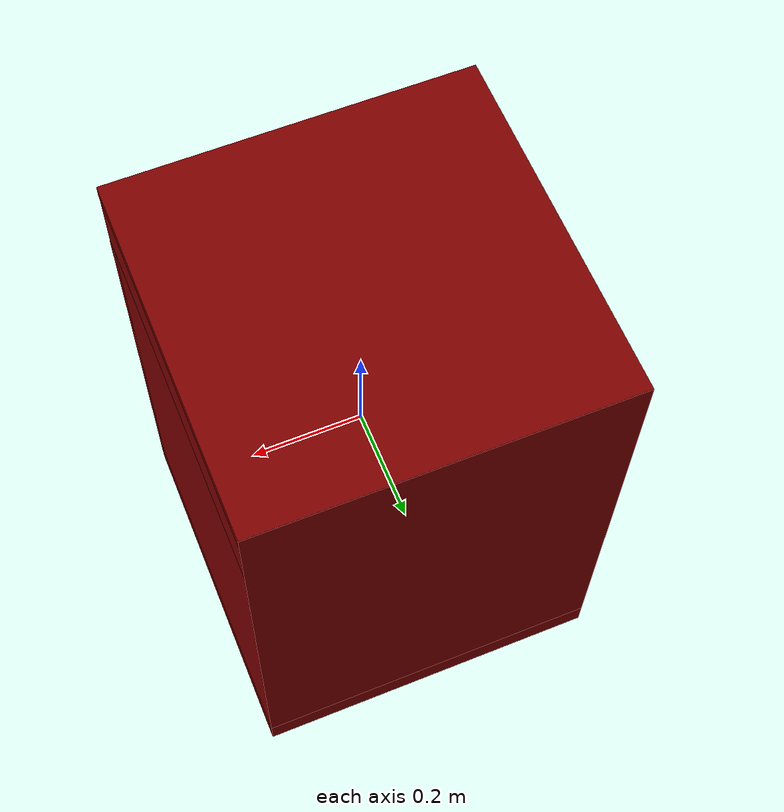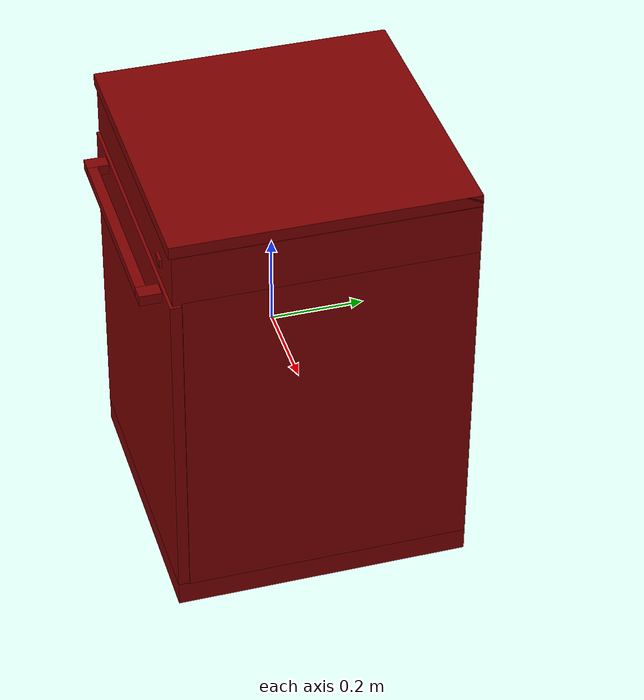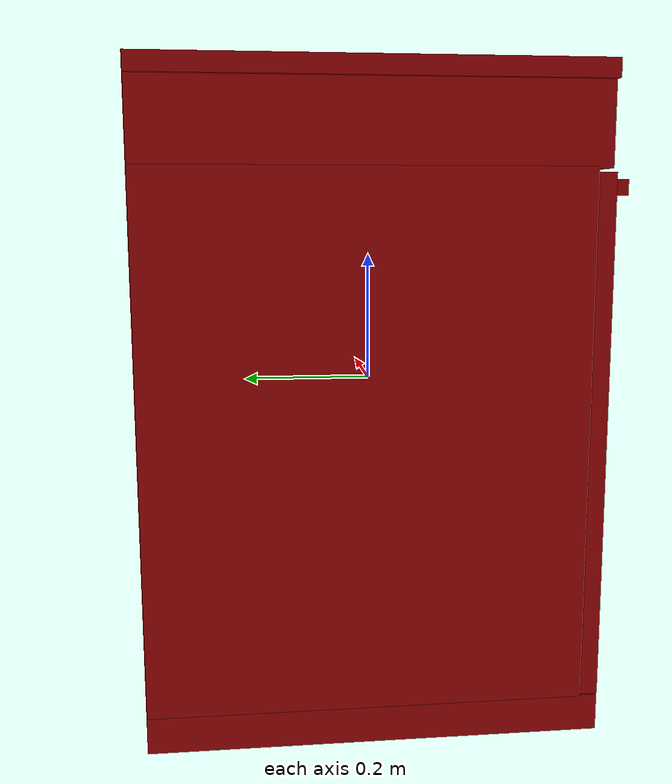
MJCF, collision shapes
<?xml version='1.0' encoding='UTF-8'?>
<mujoco model="model">
  <option timestep="0.002" gravity="0.0 0.0 -9.81"/>
  <compiler angle="radian"/>
  <asset>
    <mesh file="visuals/button_power.obj" name="button_power_vis"/>
    <mesh file="visuals/Body001.obj" name="Body001_vis"/>
    <mesh file="visuals/door.obj" name="door_vis"/>
    <mesh file="visuals/rack0.obj" name="rack0_vis"/>
    <mesh file="visuals/rack1.obj" name="rack1_vis"/>
    <texture file="visuals/T_BC001.png" name="Body001_material" type="2d"/>
    <material name="Body001_material" rgba="1 1 1 1.0" texture="Body001_material" shininess="0.2472135901451111" specular="5"/>
    <texture file="visuals/T_BC001.png" name="button_power_material" type="2d"/>
    <material name="button_power_material" rgba="1 1 1 1.0" texture="button_power_material" shininess="0.4472135901451111" specular="0.3103448502657381"/>
    <texture file="visuals/T_BC001.png" name="door_material" type="2d"/>
    <material name="door_material" rgba="1 1 1 1.0" texture="door_material" shininess="0.4472135901451111" specular="2"/>
    <texture file="visuals/T_BC001.png" name="rack0_material" type="2d"/>
    <material name="rack0_material" rgba="1 1 1 1.0" texture="rack0_material" shininess="0.4472135901451111" specular="3"/>
    <texture file="visuals/T_BC001.png" name="rack1_material" type="2d"/>
    <material name="rack1_material" rgba="1 1 1 1.0" texture="rack1_material" shininess="0.4472135901451111" specular="3"/>
  </asset>
  <default>
    <default class="visual">
      <geom conaffinity="0" contype="0" group="1" type="mesh"/>
    </default>
    <default class="collision">
      <geom group="0" rgba="0.5 0 0 0.5"/>
    </default>
    <default class="spawn">
      <geom group="0" rgba="1 1 1 0.5" contype="0" conaffinity="0"/>
      <site group="0" rgba="1 1 1 0.5"/>
    </default>
    <default class="region">
      <geom group="1" conaffinity="0" contype="0" rgba="0 1 0 0"/>
    </default>
  </default>
  <worldbody>
    <body>
      <body name="object">
        <geom mesh="Body001_vis" type="mesh" solimp="0.998 0.998 0.001" solref="0.001 1" friction="0.95 0.3 0.1" class="visual" material="Body001_material"/>
        <geom class="collision" type="box" pos="-1.525040715932846e-08 0.30323001742362976 0.026627689599990845" size="0.31804102659225464 0.03860585764050484 0.44166702032089233" quat="1.0 0.0 0.0 0.0"/>
        <geom class="collision" type="box" pos="1.4086253941059113e-08 0.022971488535404205 0.4555831253528595" size="0.3180411159992218 0.31813549995422363 0.01296332199126482" quat="1.0 0.0 0.0 0.0"/>
        <geom class="collision" type="box" pos="1.4086253941059113e-08 0.025663282722234726 0.38444429636001587" size="0.3180411756038666 0.3154437839984894 0.057000432163476944" quat="1.0 0.0 0.0 0.0"/>
        <geom class="collision" type="box" pos="5.800393410027027e-08 0.03544243425130844 0.3120642304420471" size="0.31804120540618896 0.30566471815109253 0.018426187336444855" quat="1.0 0.0 0.0 0.0"/>
        <geom class="collision" type="box" pos="0.29037579894065857 0.0354141891002655 -0.04337330162525177" size="0.02766740880906582 0.30569300055503845 0.37386175990104675" quat="1.0 0.0 0.0 0.0"/>
        <geom class="collision" type="box" pos="0.005354121793061495 0.03539561480283737 -0.40003541111946106" size="0.273350328207016 0.30571162700653076 0.017201613634824753" quat="1.0 0.0 0.0 0.0"/>
        <geom class="collision" type="box" pos="-0.2897282838821411 0.03538508713245392 -0.04337330162525177" size="0.028315013274550438 0.3057222366333008 0.3738618791103363" quat="1.0 0.0 0.0 0.0"/>
        <geom class="collision" type="box" pos="-1.525040715932846e-08 0.023583192378282547 -0.4418667256832123" size="0.31804144382476807 0.3182509243488312 0.026683226227760315" quat="1.0 0.0 0.0 0.0"/>
        <geom class="collision" type="box" pos="0.2608991265296936 0.0718698650598526 -0.20000053942203522" size="0.004682216327637434 0.26923757791519165 0.005443730857223272" quat="1.0 0.0 0.0 0.0"/>
        <geom class="collision" type="box" pos="0.2608991265296936 0.0718698650598526 0.13221301138401031" size="0.004682217258960009 0.2692376375198364 0.005443731788545847" quat="1.0 0.0 0.0 0.0"/>
        <geom class="collision" type="box" pos="-0.2600349485874176 0.0718698650598526 -0.20000053942203522" size="0.004682218190282583 0.2692376971244812 0.005443732254207134" quat="1.0 0.0 0.0 0.0"/>
        <geom class="collision" type="box" pos="-0.2600349485874176 0.0718698650598526 0.13221301138401031" size="0.004682219121605158 0.269237756729126 0.005443733185529709" quat="1.0 0.0 0.0 0.0"/>
        <body name="button_power">
          <joint axis="0.0 1.0 0.0" pos="0.24503131210803986 -0.296528160572052 0.38935890793800354" limited="true" name="button_power_joint" range="0.0 0.003" type="slide" damping="1" frictionloss="1" armature=".01" stiffness="4" springref="-1"/>
          <geom mesh="button_power_vis" type="mesh" solimp="0.998 0.998 0.001" solref="0.001 1" friction="0.95 0.3 0.1" class="visual" material="button_power_material"/>
          <geom class="collision" type="box" pos="0.24491718411445618 -0.296968013048172 0.38930103182792664" size="0.014191379770636559 0.0029950758907943964 0.009121556766331196" quat="1.0 0.0 0.0 0.0"/>
        </body>
        <body name="door">
          <joint axis="1.0 1.3234889800848443e-23 -6.617444900424222e-24" pos="7.122889655875042e-08 -0.2951662838459015 -0.41388310492038727" limited="true" name="door_joint" range="0.0 0.6035987755982988" type="hinge" damping="1" frictionloss="10" armature="1" stiffness="2"/>
          <geom mesh="door_vis" type="mesh" solimp="0.998 0.998 0.001" solref="0.001 1" friction="0.95 0.3 0.1" class="visual" material="door_material"/>
          <geom class="collision" type="box" pos="-0.2186221182346344 -0.318719744682312 0.30389589071273804" size="0.016233282163739204 0.023392561823129654 0.011333086527884007" quat="1.0 0.0 0.0 0.0"/>
          <geom class="collision" type="box" pos="0.23858052492141724 -0.318719744682312 0.30389589071273804" size="0.016233278438448906 0.023392554372549057 0.011333083733916283" quat="1.0 0.0 0.0 0.0"/>
          <geom class="collision" type="box" pos="0.009867463260889053 -0.3311851918697357 0.30409055948257446" size="0.21322576701641083 0.010966477915644646 0.010966511443257332" quat="1.0 0.0 0.0 0.0" name="door_handle_main"/>
          <geom class="collision" type="box" pos="7.122889655875042e-08 -0.2831333577632904 -0.04573307931423187" size="0.3180433213710785 0.012032926082611084 0.3681500256061554" quat="1.0 0.0 0.0 0.0" name="door_main"/>
        </body>
        <body name="rack0">
          <geom class="region" name="reg_rack0" type="box" pos="8.019804954528809e-05 -0.0039991289377212524 -0.10106194950640202" size="0.2275320122241974 0.1792955825328827 0.1385350710004568"/>
          <joint axis="0.0 -1.0 0.0" pos="0.0001357200089842081 -0.0029893568716943264 -0.23619893193244934" limited="true" name="rack0_joint" range="0.0 0.1525" type="slide" damping="1" frictionloss="1" armature=".01" stiffness="0.05"/>
          <geom mesh="rack0_vis" type="mesh" solimp="0.998 0.998 0.001" solref="0.001 1" friction="0.95 0.3 0.1" class="visual" material="rack0_material"/>
          <geom class="collision" type="box" pos="0.17070148885250092 -0.000393592199543491 -0.2571559250354767" size="0.0021063745953142643 0.19092200696468353 0.03260953351855278" quat="0.5735765695571899 -5.503017419528078e-08 0.8191519379615784 7.152777925512055e-08"/>
          <geom class="collision" type="box" pos="0.21829253435134888 -0.00039357467903755605 -0.26953601837158203" size="0.01775990054011345 0.19092139601707458 0.002106372732669115" quat="1.0 0.0 0.0 0.0"/>
          <geom class="collision" type="box" pos="0.0885879322886467 -0.0003935809654649347 -0.2650907635688782" size="0.0021063743624836206 0.19092200696468353 0.05448018014431" quat="0.8191519975662231 -3.853253360830422e-08 0.5735765099525452 2.203490190311186e-08"/>
          <geom class="collision" type="box" pos="-0.010581511072814465 -0.00039357307832688093 -0.27068594098091125" size="0.0021063743624836206 0.19092200696468353 0.04610136151313782" quat="0.8191519975662231 -3.853253360830422e-08 0.5735765099525452 2.203490190311186e-08"/>
          <geom class="collision" type="box" pos="-0.0960923507809639 -0.0003935650165658444 -0.27211982011795044" size="0.0021063743624836206 0.19092200696468353 0.03967897966504097" quat="0.766044557094574 -4.31821263191523e-08 0.642787516117096 3.490177746812151e-08"/>
          <geom class="collision" type="box" pos="-0.1751427799463272 -0.0003935688000638038 -0.2694401443004608" size="0.0021063743624836206 0.19092200696468353 0.036853160709142685" quat="0.766044557094574 -4.3182115661011267e-08 0.642787516117096 3.490178102083519e-08"/>
          <geom class="collision" type="box" pos="-0.22322265803813934 -0.00039355549961328506 -0.2764270603656769" size="0.013062821701169014 0.19092200696468353 0.0021063785534352064" quat="1.0 0.0 0.0 0.0"/>
          <geom class="collision" type="box" pos="-0.00043208489660173655 0.18630917370319366 -0.23173651099205017" size="0.23372139036655426 0.002106419764459133 0.04274863377213478" quat="1.0 0.0 0.0 0.0"/>
          <geom class="collision" type="box" pos="-0.00043208489660173655 -0.19172632694244385 -0.23173651099205017" size="0.23372139036655426 0.002106419764459133 0.04274863377213478" quat="1.0 0.0 0.0 0.0"/>
          <geom class="collision" type="box" pos="0.23434631526470184 -0.0003936115826945752 -0.23673561215400696" size="0.0021063743624836206 0.19092200696468353 0.034181248396635056" quat="1.0 0.0 0.0 0.0"/>
          <geom class="collision" type="box" pos="-0.24419963359832764 -0.00039368655416183174 -0.19535736739635468" size="0.0021063743624836206 0.19092200696468353 0.013532133772969246" quat="0.887010931968689 3.1020011448390505e-08 -0.4617484509944916 -1.216288012528821e-07"/>
          <geom class="collision" type="box" pos="0.24411487579345703 -0.000393684022128582 -0.19715175032615662" size="0.0021063743624836206 0.19092200696468353 0.01353213656693697" quat="0.5000000596046448 5.817895143422902e-08 -0.8660253882408142 -1.4994768093856692e-07"/>
          <geom class="collision" type="box" pos="0.19503551721572876 -0.0003936128632631153 -0.2474895417690277" size="0.0021064095199108124 0.19092200696468353 0.024744460359215736" quat="1.0 0.0 0.0 0.0"/>
          <geom class="collision" type="box" pos="0.05028669908642769 -0.0003936128632631153 -0.25327765941619873" size="0.002106411848217249 0.19092296063899994 0.03014213778078556" quat="1.0 0.0 0.0 0.0"/>
          <geom class="collision" type="box" pos="-0.042785968631505966 -0.0003936128632631153 -0.25327765941619873" size="0.002106411848217249 0.19092291593551636 0.03014213778078556" quat="1.0 0.0 0.0 0.0"/>
          <geom class="collision" type="box" pos="-0.12168937176465988 -0.0003936128632631153 -0.2513328492641449" size="0.002106410451233387 0.19092200696468353 0.02696968987584114" quat="1.0 0.0 0.0 0.0"/>
          <geom class="collision" type="box" pos="-0.19920361042022705 -0.0003936128632631153 -0.2513328492641449" size="0.002106410451233387 0.19092200696468353 0.02696969360113144" quat="1.0 0.0 0.0 0.0"/>
          <geom class="collision" type="box" pos="-0.1366921216249466 -0.0003935719723813236 -0.27145275473594666" size="0.0021063745953142643 0.19092200696468353 0.010325625538825989" quat="0.1305263638496399 -6.66046986452784e-08 0.9914448261260986 1.2444070307537913e-07"/>
          <geom class="collision" type="box" pos="-0.05642363429069519 -0.00039356533670797944 -0.27614885568618774" size="0.0021063743624836206 0.19092200696468353 0.013175294734537601" quat="0.08715591579675674 -6.692373943906205e-08 0.9961946606636047 1.2799242199434957e-07"/>
          <geom class="collision" type="box" pos="0.03500988706946373 -0.00039357380592264235 -0.2701583206653595" size="0.0021063743624836206 0.19092200696468353 0.016254505142569542" quat="0.08715591579675674 -6.692373943906205e-08 0.9961946606636047 1.2799242199434957e-07"/>
          <geom class="collision" type="box" pos="-0.23474733531475067 -0.0003936115826945752 -0.23952695727348328" size="0.0021063743624836206 0.1909227818250656 0.03796340152621269" quat="1.0 0.0 0.0 0.0"/>
        </body>
        <body name="rack1">
          <geom class="region" name="reg_rack1" type="box" pos="-0.00011516362428665161 -0.0037406161427497864 0.19073333963751793" size="0.227150281727314 0.1790231073498726 0.09900282493233681"/>
          <joint axis="0.0 -1.0 0.0" pos="0.0001357200089842081 -0.0029893568716943264 0.09506732225418091" limited="true" name="rack1_joint" range="0.0 0.3435" type="slide" damping="1" frictionloss="1" armature=".01" stiffness="0.05"/>
          <geom mesh="rack1_vis" type="mesh" solimp="0.998 0.998 0.001" solref="0.001 1" friction="0.95 0.3 0.1" class="visual" material="rack1_material"/>
          <geom class="collision" type="box" pos="-0.23474733531475067 -0.0003936115826945752 0.09173931181430817" size="0.0021063743624836206 0.19092273712158203 0.03796340152621269" quat="1.0 0.0 0.0 0.0"/>
          <geom class="collision" type="box" pos="0.23434631526470184 -0.0003936115826945752 0.09453064203262329" size="0.0021063743624836206 0.19092200696468353 0.034181248396635056" quat="1.0 0.0 0.0 0.0"/>
          <geom class="collision" type="box" pos="-0.22322265803813934 -0.00039355549961328506 0.05483919382095337" size="0.013062821701169014 0.19092200696468353 0.0021063785534352064" quat="1.0 0.0 0.0 0.0"/>
          <geom class="collision" type="box" pos="-0.1751427799463272 -0.0003935688000638038 0.06182612478733063" size="0.0021063743624836206 0.19092200696468353 0.036853160709142685" quat="0.766044557094574 -4.3182115661011267e-08 0.642787516117096 3.490178102083519e-08"/>
          <geom class="collision" type="box" pos="-0.0960923507809639 -0.0003935650165658444 0.059146448969841" size="0.0021063743624836206 0.19092200696468353 0.03967897966504097" quat="0.766044557094574 -4.31821263191523e-08 0.642787516117096 3.490177746812151e-08"/>
          <geom class="collision" type="box" pos="-0.010581511072814465 -0.00039357307832688093 0.06058032810688019" size="0.0021063743624836206 0.19092200696468353 0.04610136151313782" quat="0.8191519975662231 -3.853253360830422e-08 0.5735765099525452 2.203490190311186e-08"/>
          <geom class="collision" type="box" pos="0.0885879322886467 -0.0003935809654649347 0.06617549806833267" size="0.0021063743624836206 0.19092200696468353 0.05448018014431" quat="0.8191519975662231 -3.853253360830422e-08 0.5735765099525452 2.203490190311186e-08"/>
          <geom class="collision" type="box" pos="0.21829253435134888 -0.00039357467903755605 0.06173022836446762" size="0.01775990054011345 0.19092170894145966 0.0021063764579594135" quat="1.0 0.0 0.0 0.0"/>
          <geom class="collision" type="box" pos="0.17070148885250092 -0.000393592199543491 0.07411033660173416" size="0.0021063745953142643 0.19092200696468353 0.03260953351855278" quat="0.5735765695571899 -5.503017419528078e-08 0.8191519379615784 7.152777925512055e-08"/>
          <geom class="collision" type="box" pos="0.03500988706946373 -0.00039357380592264235 0.061107948422431946" size="0.0021063743624836206 0.19092200696468353 0.016254505142569542" quat="0.08715591579675674 -6.692373943906205e-08 0.9961946606636047 1.2799242199434957e-07"/>
          <geom class="collision" type="box" pos="-0.05642363429069519 -0.00039356533670797944 0.05511739104986191" size="0.0021063743624836206 0.19092200696468353 0.013175294734537601" quat="0.08715591579675674 -6.692373943906205e-08 0.9961946606636047 1.2799242199434957e-07"/>
          <geom class="collision" type="box" pos="-0.1366921216249466 -0.0003935719723813236 0.05981351435184479" size="0.0021063745953142643 0.19092200696468353 0.010325625538825989" quat="0.1305263638496399 -6.66046986452784e-08 0.9914448261260986 1.2444070307537913e-07"/>
          <geom class="collision" type="box" pos="-0.19920361042022705 -0.0003936128632631153 0.07993341982364655" size="0.002106410451233387 0.19092200696468353 0.02696971222758293" quat="1.0 0.0 0.0 0.0"/>
          <geom class="collision" type="box" pos="-0.12168937176465988 -0.0003936128632631153 0.07993341982364655" size="0.002106410451233387 0.19092200696468353 0.02696971595287323" quat="1.0 0.0 0.0 0.0"/>
          <geom class="collision" type="box" pos="-0.042785968631505966 -0.0003936128632631153 0.07798861712217331" size="0.002106411848217249 0.19092246890068054 0.03014213778078556" quat="1.0 0.0 0.0 0.0"/>
          <geom class="collision" type="box" pos="0.05028669908642769 -0.0003936128632631153 0.07798861712217331" size="0.002106411848217249 0.19092240929603577 0.03014213778078556" quat="1.0 0.0 0.0 0.0"/>
          <geom class="collision" type="box" pos="0.19503551721572876 -0.0003936128632631153 0.08377671986818314" size="0.0021064095199108124 0.19092200696468353 0.024744460359215736" quat="1.0 0.0 0.0 0.0"/>
          <geom class="collision" type="box" pos="0.24411487579345703 -0.000393684022128582 0.13411450386047363" size="0.0021063743624836206 0.19092200696468353 0.01353213656693697" quat="0.5000000596046448 5.817895143422902e-08 -0.8660253882408142 -1.4994768093856692e-07"/>
          <geom class="collision" type="box" pos="-0.24419963359832764 -0.00039368655416183174 0.13590890169143677" size="0.0021063743624836206 0.19092200696468353 0.013532133772969246" quat="0.887010931968689 3.1020011448390505e-08 -0.4617484509944916 -1.216288012528821e-07"/>
          <geom class="collision" type="box" pos="-0.00043208489660173655 -0.19172632694244385 0.09952975809574127" size="0.23372139036655426 0.002106419764459133 0.04274863377213478" quat="1.0 0.0 0.0 0.0"/>
          <geom class="collision" type="box" pos="-0.00043208489660173655 0.18630917370319366 0.09952975809574127" size="0.23372139036655426 0.002106419764459133 0.04274863377213478" quat="1.0 0.0 0.0 0.0"/>
        </body>
        <geom class="region" name="reg_int" type="box" pos="0.004317194223403931 0.00060996413230896 -0.050387412309646606" size="0.2505766580104828 0.2599147984981537 0.3250792751312256"/>
        <geom class="region" name="reg_main" type="box" pos="-7.450580596923828e-09 0.0232371985912323 0.0" size="0.31904338097572327 0.31959874725341797 0.46954645013809204"/>
      </body>
    </body>
  </worldbody>
  <actuator>
    <motor name="button_power_joint_actuator" joint="button_power_joint" gear="0.5"/>
    <motor name="door_joint_actuator" joint="door_joint" gear="50"/>
    <motor name="rack0_joint_actuator" joint="rack0_joint" gear="50"/>
    <motor name="rack1_joint_actuator" joint="rack1_joint" gear="50"/>
  </actuator>
</mujoco>
